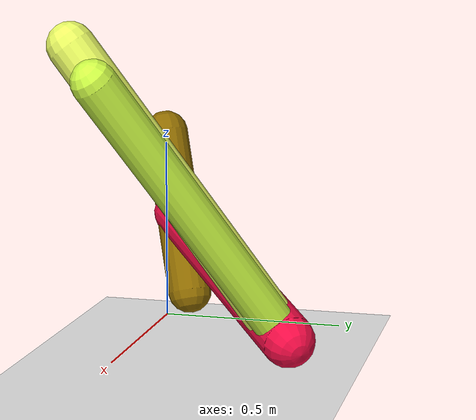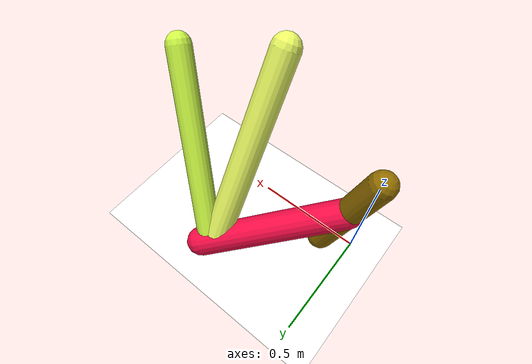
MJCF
<mujoco model="morphology">
  <option timestep="0.01"/>
  <default>
    <default class="/"/>
    <default class="0/"/>
    <default class="0/1/"/>
    <default class="0/1/2/"/>
    <default class="0/1/3/"/>
  </default>
  <asset>
    <texture name="texplane" type="2d" builtin="checker" rgb1="0.10000000000000001 0.20000000000000001 0.29999999999999999" rgb2="0.20000000000000001 0.29999999999999999 0.40000000000000002" width="300" height="300"/>
    <material name="MatPlane" class="/" texture="texplane" texrepeat="20 20" specular="1" shininess="1" reflectance="0.5"/>
  </asset>
  <worldbody>
    <light name="//unnamed_light_0" class="/" directional="true" pos="0 0 1.5" dir="0 0 -1.3" cutoff="100" exponent="1" diffuse="1 1 1" specular="0.10000000000000001 0.10000000000000001 0.10000000000000001"/>
    <geom name="ground" class="/" type="plane" size="15 15 0.5" material="MatPlane" rgba="1 1 1 1"/>
    <site name="body" class="/" size="9.9999999999999995e-07 9.9999999999999995e-07 9.9999999999999995e-07" pos="0 0 0.5286602735519409"/>
    <body pos="0 0 0.5286602735519409" name="0/">
      <freejoint name="0/"/>
      <geom name="0/geom" class="0/" type="capsule" contype="1" conaffinity="1" condim="3" size="0.060750385689759781" rgba="0.56335930177485316 0.42425634838961068 3.4674345296470399e-05 1" friction="0.59999999999999998 0.10000000000000001 0.10000000000000001" fromto="0 0 0 0.12399224011633103 0.1022970690194287 -0.42308707027140458"/>
      <site name="0/end0" class="0/" size="0.0050000000000000001" pos="0.12399224011633103 0.1022970690194287 -0.42308707027140458"/>
      <site name="0/attach1" class="0/" size="9.9999999999999995e-07 9.9999999999999995e-07 9.9999999999999995e-07" pos="0.062900928282898422 0.05189502662347896 -0.2146309272225019"/>
      <body pos="0.062900928282898422 0.05189502662347896 -0.2146309272225019" name="0/1/">
        <joint name="0/1/joint/" class="0/" type="hinge" axis="0 0 1" limited="true" range="-41.970337406925367 41.970337406925367"/>
        <geom name="0/1/geom" class="0/1/" type="capsule" contype="1" conaffinity="1" condim="3" size="0.067019839780656454" rgba="0.94113383089720692 0.039419524622662516 0.26751786986497805 1" friction="0.59999999999999998 0.10000000000000001 0.10000000000000001" fromto="0 0 0 0.46319234006833643 0.41362562303418438 -0.21402935407246737"/>
        <site name="0/1/end1" class="0/1/" size="0.0050000000000000001" pos="0.46319234006833643 0.41362562303418438 -0.21402935407246737"/>
        <site name="0/1/attach2" class="0/1/" size="9.9999999999999995e-07 9.9999999999999995e-07 9.9999999999999995e-07" pos="0.43392994946843055 0.38749463273851148 -0.2005079505065317"/>
        <body pos="0.43392994946843055 0.38749463273851148 -0.2005079505065317" name="0/1/2/">
          <joint name="0/1/2/joint/" class="0/1/" type="hinge" axis="2.7755575615628914e-17 0.45956701543008671 0.88814309563756799" limited="true" range="-58.399143003225618 58.399143003225618"/>
          <geom name="0/1/2/geom" class="0/1/2/" type="capsule" contype="1" conaffinity="1" condim="3" size="0.052284414803529702" rgba="0.80633942894111865 0.98597259918324853 0.26995954570282721 1" friction="0.59999999999999998 0.10000000000000001 0.10000000000000001" fromto="0 0 0 0.39175592596562803 -0.33838960412171948 0.64440148728143098"/>
          <site name="0/1/2/end2" class="0/1/2/" size="0.0050000000000000001" pos="0.39175592596562803 -0.33838960412171948 0.64440148728143098"/>
        </body>
        <site name="0/1/attach3" class="0/1/" size="9.9999999999999995e-07 9.9999999999999995e-07 9.9999999999999995e-07" pos="0.41417965325842959 0.3698578372471048 -0.19138184289442664"/>
        <body pos="0.41417965325842959 0.3698578372471048 -0.19138184289442664" name="0/1/3/">
          <joint name="0/1/3/joint/" class="0/1/" type="hinge" axis="-0.7090279384190642 0.62630109462089556 -0.32407764720492449" limited="true" range="-35.109062823547134 35.109062823547134"/>
          <geom name="0/1/3/geom" class="0/1/3/" type="capsule" contype="1" conaffinity="1" condim="3" size="0.060510146588622526" rgba="0.91316279516244692 0.98247821578060401 0.38327513439171035 1" friction="0.59999999999999998 0.10000000000000001 0.10000000000000001" fromto="0 0 0 0.050182065170568557 -0.50675453062249665 0.6859060534739958"/>
          <site name="0/1/3/end3" class="0/1/3/" size="0.0050000000000000001" pos="0.050182065170568557 -0.50675453062249665 0.6859060534739958"/>
        </body>
      </body>
      <camera name="0/iso" class="0/" mode="trackcom" pos="-2.2999999999999998 -2.2999999999999998 1" xyaxes="0.45000000000000001 -0.45000000000000001 0 0.29999999999999999 0.14999999999999999 0.93999999999999995"/>
    </body>
  </worldbody>
  <actuator>
    <motor name="0/1/motor" class="0/1/" ctrllimited="true" ctrlrange="-1 1" gear="97" joint="0/1/joint/"/>
    <motor name="0/1/2/motor" class="0/1/2/" ctrllimited="true" ctrlrange="-1 1" gear="74" joint="0/1/2/joint/"/>
    <motor name="0/1/3/motor" class="0/1/3/" ctrllimited="true" ctrlrange="-1 1" gear="74" joint="0/1/3/joint/"/>
  </actuator>
  <sensor>
    <subtreelinvel name="velocity" body="0/"/>
  </sensor>
</mujoco>
